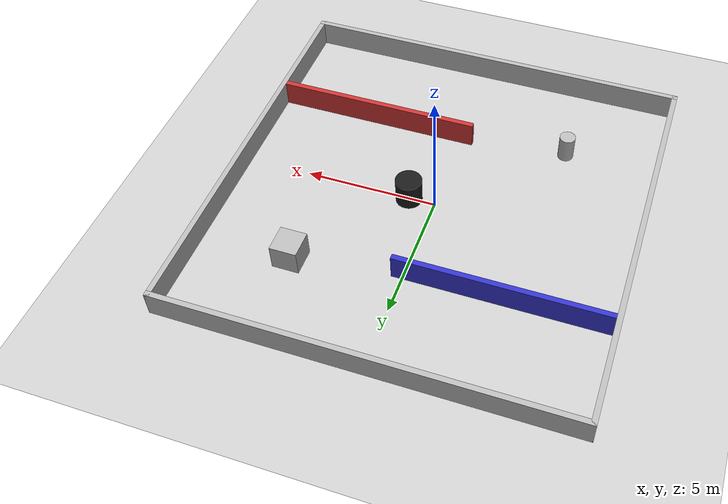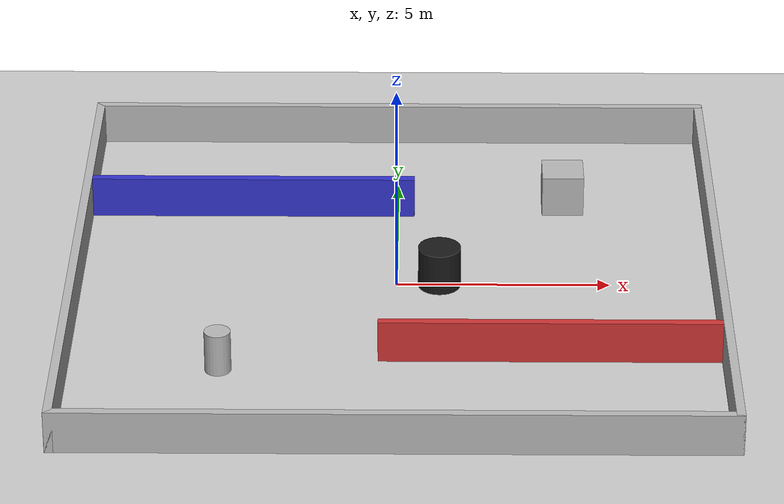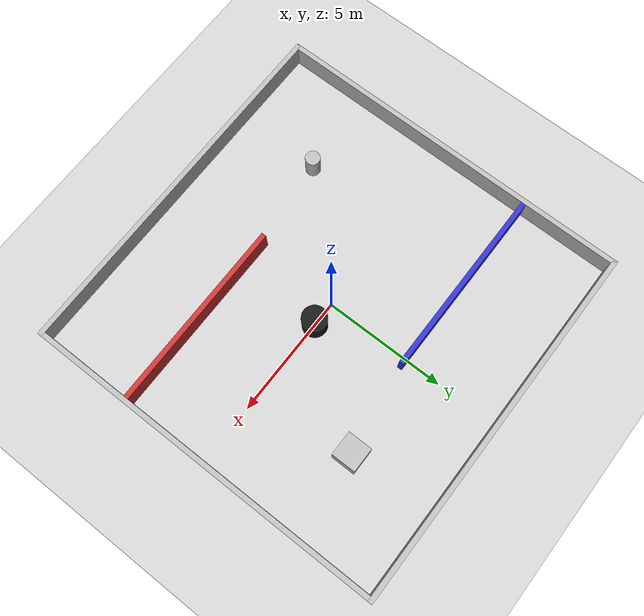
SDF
<?xml version="1.0" ?>
<sdf version="1.8">
  <world name="warehouse_world">

    <physics name="1ms" type="ignored">
      <max_step_size>0.001</max_step_size>
      <real_time_factor>1.0</real_time_factor>
    </physics>
    <plugin filename="libignition-gazebo-physics-system.so" name="ignition::gazebo::systems::Physics"></plugin>
    <plugin filename="libignition-gazebo-user-commands-system.so" name="ignition::gazebo::systems::UserCommands"></plugin>
    <plugin filename="libignition-gazebo-scene-broadcaster-system.so" name="ignition::gazebo::systems::SceneBroadcaster"></plugin>

    <light type="directional" name="sun">
      <cast_shadows>true</cast_shadows>
      <pose>0 0 10 0 0 0</pose>
      <diffuse>0.8 0.8 0.8 1</diffuse>
      <specular>0.2 0.2 0.2 1</specular>
      <direction>-0.5 0.1 -0.9</direction>
    </light>

    <model name="ground_plane">
      <static>true</static>
      <link name="link">
        <collision name="collision"><geometry><plane><normal>0 0 1</normal><size>100 100</size></plane></geometry></collision>
        <visual name="visual">
          <geometry><plane><normal>0 0 1</normal><size>100 100</size></plane></geometry>
          <material><ambient>0.8 0.8 0.8 1</ambient><diffuse>0.8 0.8 0.8 1</diffuse></material>
        </visual>
      </link>
    </model>

    <model name="outer_walls">
      <static>true</static>
      <link name="link">
        <visual name="v1"><pose>0 7.5 0.5 0 0 0</pose><geometry><box><size>15.2 0.2 1</size></box></geometry></visual>
        <collision name="c1"><pose>0 7.5 0.5 0 0 0</pose><geometry><box><size>15.2 0.2 1</size></box></geometry></collision>

        <visual name="v2"><pose>0 -7.5 0.5 0 0 0</pose><geometry><box><size>15.2 0.2 1</size></box></geometry></visual>
        <collision name="c2"><pose>0 -7.5 0.5 0 0 0</pose><geometry><box><size>15.2 0.2 1</size></box></geometry></collision>

        <visual name="v3"><pose>7.5 0 0.5 0 0 0</pose><geometry><box><size>0.2 15.2 1</size></box></geometry></visual>
        <collision name="c3"><pose>7.5 0 0.5 0 0 0</pose><geometry><box><size>0.2 15.2 1</size></box></geometry></collision>

        <visual name="v4"><pose>-7.5 0 0.5 0 0 0</pose><geometry><box><size>0.2 15.2 1</size></box></geometry></visual>
        <collision name="c4"><pose>-7.5 0 0.5 0 0 0</pose><geometry><box><size>0.2 15.2 1</size></box></geometry></collision>
      </link>
    </model>

    <model name="room_a_wall">
      <static>true</static>
      <pose>-3.5 3.5 0.5 0 0 0</pose>
      <link name="link">
        <visual name="v"><geometry><box><size>7.8 0.2 1</size></box></geometry><material><diffuse>0.2 0.2 0.8 1</diffuse></material></visual>
        <collision name="c"><geometry><box><size>7.8 0.2 1</size></box></geometry></collision>
      </link>
    </model>

    <model name="room_b_wall">
      <static>true</static>
      <pose>3.5 -3.5 0.5 0 0 0</pose>
      <link name="link">
        <visual name="v"><geometry><box><size>7.8 0.2 1</size></box></geometry><material><diffuse>0.8 0.2 0.2 1</diffuse></material></visual>
        <collision name="c"><geometry><box><size>7.8 0.2 1</size></box></geometry></collision>
      </link>
    </model>

    <model name="center_pillar">
      <static>true</static>
      <pose>1 0 0.5 0 0 0</pose>
      <link name="link">
        <visual name="v"><geometry><cylinder><radius>0.5</radius><length>1</length></cylinder></geometry><material><diffuse>0.1 0.1 0.1 1</diffuse></material></visual>
        <collision name="c"><geometry><cylinder><radius>0.5</radius><length>1</length></cylinder></geometry></collision>
      </link>
    </model>

    <model name="obstacle_1">
      <static>true</static>
      <pose>4 4 0.5 0 0 0</pose>
      <link name="link">
        <visual name="v"><geometry><box><size>1 1 1</size></box></geometry></visual>
        <collision name="c"><geometry><box><size>1 1 1</size></box></geometry></collision>
      </link>
    </model>

    <model name="obstacle_2">
      <static>true</static>
      <pose>-4 -4 0.5 0 0 0</pose>
      <link name="link">
        <visual name="v"><geometry><cylinder><radius>0.3</radius><length>1</length></cylinder></geometry></visual>
        <collision name="c"><geometry><cylinder><radius>0.3</radius><length>1</length></cylinder></geometry></collision>
      </link>
    </model>

  </world>
</sdf>
